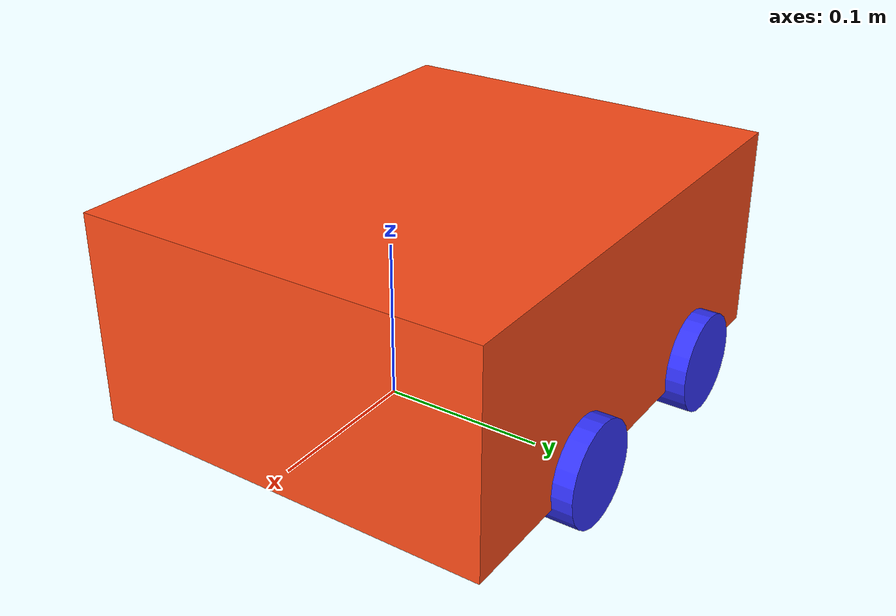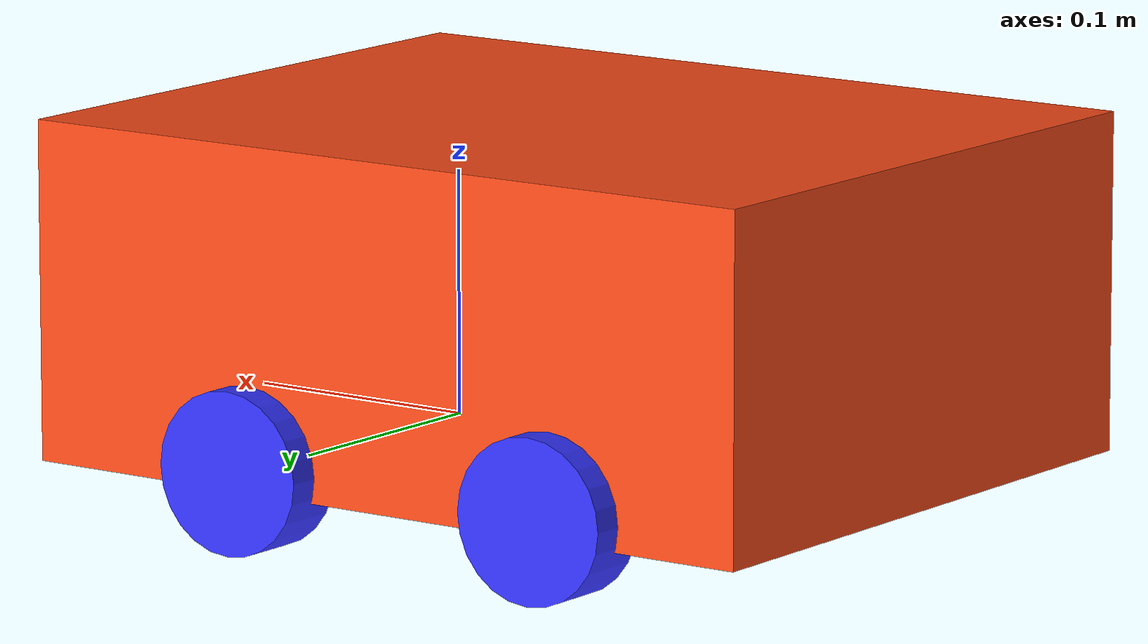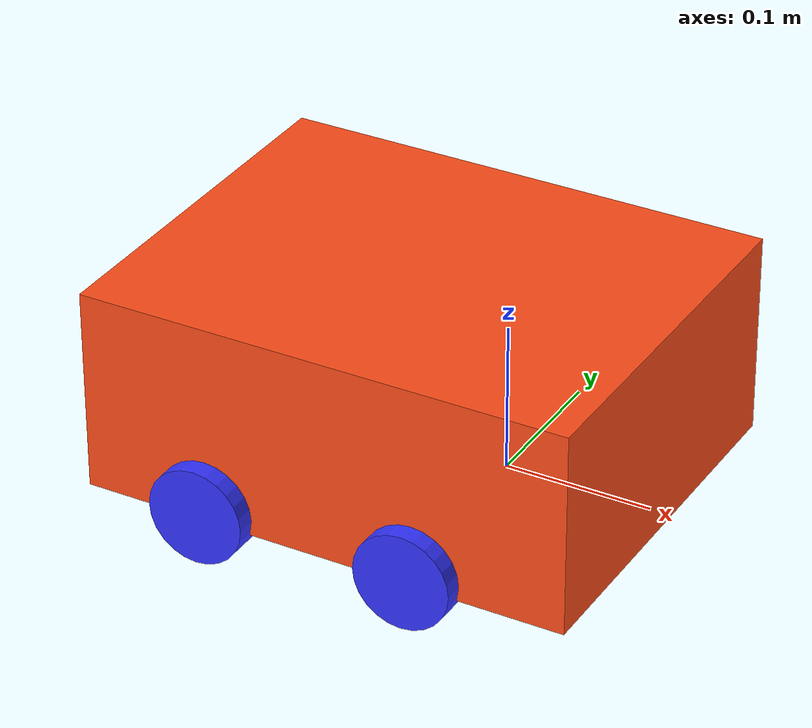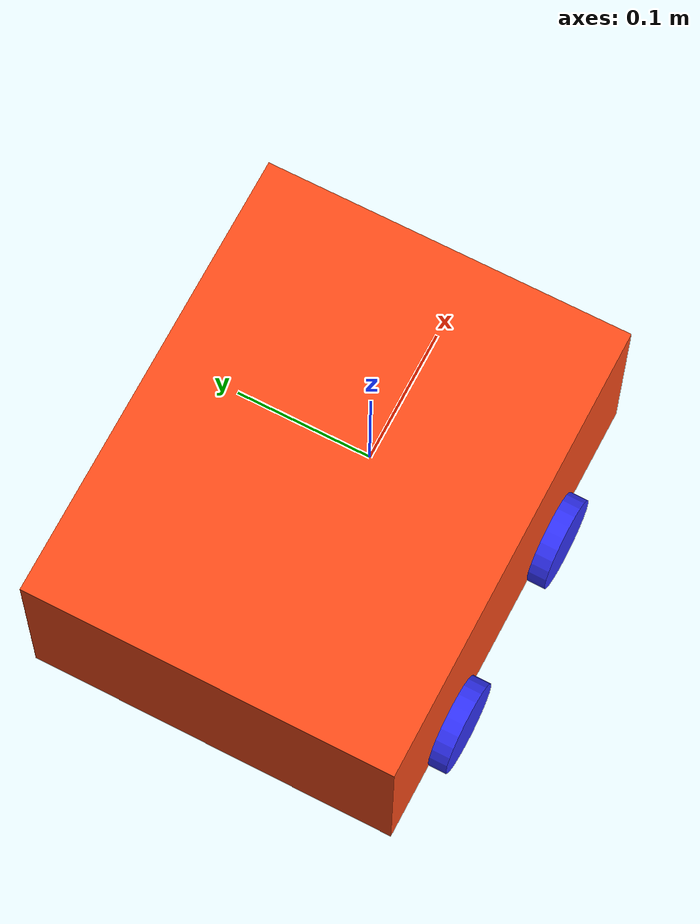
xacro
<?xml version="1.0"?>
<robot xmlns:xacro="http://www.ros.org/wiki/xacro" >
    <xacro:include filename="inertial_macros.xacro"/>
    <xacro:arg name="c_length" default="0.335"/>
    <xacro:property name="chassis_length" value="$(arg c_length)"/>
    <xacro:arg name="c_width" default="0.265"/>
    <xacro:property name="chassis_width" value="$(arg c_width)"/>
    <xacro:arg name="c_height" default="0.138"/>
    <xacro:property name="chassis_height" value="$(arg c_height)"/>
    <xacro:property name="chassis_mass" value="1.0"/>
    <xacro:arg name="wheels_d" default="0.033"/>
    <xacro:property name="wheel_radius" value="$(arg wheels_d)"/>
    <xacro:arg name="wheels_width" default="0.026"/>
    <xacro:arg name="fl_sensor" default="-"/>
    <xacro:property name="fl" value="$(arg fl_sensor)"/>
    <xacro:arg name="fr_sensor" default="-"/>
    <xacro:property name="fr" value="$(arg fr_sensor)"/>
    <xacro:arg name="sl_sensor" default="-"/>
    <xacro:property name="sl" value="$(arg sl_sensor)"/>
    <xacro:arg name="sr_sensor" default="-"/>
    <xacro:property name="sr" value="$(arg sr_sensor)"/>
    <xacro:arg name="rl_sensor" default="-"/>
    <xacro:property name="rl" value="$(arg rl_sensor)"/>
    <xacro:arg name="rr_sensor" default="-"/>
    <xacro:property name="rr" value="$(arg rr_sensor)"/>
    <xacro:property name="wheel_thickness" value="$(arg wheels_width)"/>
    <xacro:property name="wheel_mass" value="0.105"/>
    <xacro:property name="wheel_offset_x" value="0.226"/>
    <xacro:property name="wheel_offset_y" value="${chassis_width / 2}"/>
    <xacro:property name="wheel_offset_z" value="0.01"/>
    <xacro:property name="caster_wheel_radius" value="0.01"/>
    <xacro:property name="caster_wheel_mass" value="0.01"/>
    <xacro:property name="caster_wheel_offset_x" value="0.075"/>
    <xacro:property name="caster_wheel_offset_z" value="${wheel_offset_z - wheel_radius + caster_wheel_radius}"/>

    <xacro:arg name="front_camera" default="False"/>
    <xacro:arg name="rear_camera" default="False"/>

    <xacro:macro name="lidar" params="sensor_x sensor_y sensor_z sensor_angle_x sensor_angle_y frame_name joint_name sensor_name sensor_controller_name min_angle max_angle">
    <joint name="${joint_name}" type="fixed">
        <parent link="chassis"/>
        <child link="${frame_name}"/>
        <origin xyz="${sensor_x} ${sensor_y} ${sensor_z}" rpy="${sensor_angle_x} ${sensor_angle_y} 0"/>
    </joint>

    <link name="${frame_name}">
        <visual>
            <origin xyz="0 0 0"/>
            <geometry>
                <cylinder radius="0.01" length="0.1"/>
            </geometry>
            <material name="black"/>
        </visual>
        <collision>
            <geometry>
                <cylinder radius="0.01" length="0.1"/>
            </geometry>
        </collision>
        <xacro:inertial_cylinder mass="0.1" length="0.04" radius="0.05">
            <origin xyz="0 0 0" rpy="0 0 0"/>
        </xacro:inertial_cylinder>
    </link>

    <gazebo reference="${frame_name}">
        <material>Gazebo/Black</material>

        <sensor name="${sensor_name}" type="ray">
            <pose> 0 0 0 0 0 0 </pose>
            <visualize>false</visualize>
            <update_rate>10</update_rate>
            <ray>
                <scan>
                    <horizontal>
                        <samples>45</samples>
                        <min_angle>${min_angle}</min_angle>
                        <max_angle>${max_angle}</max_angle>
                    </horizontal>
                </scan>
                <range>
                    <min>0.3</min>
                    <max>12</max>
                </range>
            </ray>
            <plugin name="${sensor_controller_name}" filename="libgazebo_ros_ray_sensor.so">
                <ros>
                    <argument>~/out:=${sensor_controller_name}/lidar</argument>
                </ros>
                <output_type>sensor_msgs/LaserScan</output_type>
                <frame_name>${frame_name}</frame_name>
            </plugin>
        </sensor>
    </gazebo>
    </xacro:macro>

    <xacro:macro name="camera" params="camera_joint link_name camera_optical_joint camera_link_optical sensor_name camera_controller angle x">
        <joint name="${camera_joint}" type="fixed">
            <parent link="chassis"/>
            <child link="${link_name}"/>
            <origin xyz="${x} 0 0.181" rpy="0 0.18 ${angle}"/>
        </joint>

        <link name="${link_name}">
            <visual>
                <geometry>
                    <box size="0.010 0.03 0.03"/>
                </geometry>
                <material name="black"/>
            </visual>
            <visual>
                <origin xyz="0 0 -0.05"/>
                <geometry>
                    <cylinder radius="0.002" length="0.1"/>
                </geometry>
                <material name="black"/>
            </visual>
        </link>
        <joint name="${camera_optical_joint}" type="fixed">
            <parent link="${link_name}"/>
            <child link="${camera_optical_joint}"/>
            <origin xyz="0 0 0" rpy="${-pi/2} 0 ${-pi/2}"/>
        </joint>

        <link name="${camera_optical_joint}"></link>
        <gazebo reference="${link_name}">
            <material>Gazebo/Black</material>

            <sensor name="${sensor_name}" type="camera">
                <pose> 0 0 0 0 0 0 </pose>
                <visualize>false</visualize>
                <update_rate>10</update_rate>
                <camera>
                    <horizontal_fov>1.089</horizontal_fov>
                    <image>
                        <format>R8G8B8</format>
                        <width>640</width>
                        <height>480</height>
                    </image>
                    <clip>
                        <near>0.05</near>
                        <far>8.0</far>
                    </clip>
                </camera>
                <plugin name="${camera_controller}" filename="libgazebo_ros_camera.so">
                    <frame_name>${camera_link_optical}</frame_name>
                </plugin>
            </sensor>
        </gazebo>
    </xacro:macro>

    <xacro:if value="${fl == 'lidar_sensor'}">
        <xacro:lidar sensor_y="${-chassis_width/4}" sensor_x="${0}" sensor_z="${chassis_height/2}" sensor_angle_x="0" sensor_angle_y="0" frame_name="fl_frame" joint_name="fl_joint" sensor_name="fl_sensor" sensor_controller_name="lf" min_angle="${pi/2}" max_angle="${3*pi/2}"/>
    </xacro:if>
    <xacro:if value="${fr == 'lidar_sensor'}">
        <xacro:lidar sensor_y="${chassis_width/4}" sensor_x="${0}" sensor_z="${chassis_height/2}" sensor_angle_x="0" sensor_angle_y="0" frame_name="fr_frame" joint_name="fr_joint" sensor_name="fr_sensor" sensor_controller_name="rf" min_angle="${pi/2}" max_angle="${3*pi/2}"/>
    </xacro:if>
    <xacro:if value="${sl == 'lidar_sensor'}">
        <xacro:lidar sensor_y="${-chassis_width/2}" sensor_x="${chassis_length/2}" sensor_z="${chassis_height/2}" sensor_angle_x="0" sensor_angle_y="0" frame_name="sl_frame" joint_name="sl_joint" sensor_name="sl_sensor" sensor_controller_name="ls" min_angle="${pi}" max_angle="${2*pi}"/>
    </xacro:if>
    <xacro:if value="${sr == 'lidar_sensor'}">
        <xacro:lidar sensor_y="${chassis_width/2}" sensor_x="${chassis_length/2}" sensor_z="${chassis_height/2}" sensor_angle_x="0" sensor_angle_y="0" frame_name="sr_frame" joint_name="sr_joint" sensor_name="sr_sensor" sensor_controller_name="rs" min_angle="${0}" max_angle="${pi}"/>
    </xacro:if>
    <xacro:if value="${rl == 'lidar_sensor'}">
        <xacro:lidar sensor_y="${-chassis_width/4}" sensor_x="${chassis_length}" sensor_z="${chassis_height/2}" sensor_angle_x="0" sensor_angle_y="0" frame_name="rl_frame" joint_name="rl_joint" sensor_name="rl_sensor" sensor_controller_name="rl" min_angle="${-pi/2}" max_angle="${pi/2}"/>
    </xacro:if>
    <xacro:if value="${rr == 'lidar_sensor'}">
        <xacro:lidar sensor_y="${chassis_width/4}" sensor_x="${chassis_length}" sensor_z="${chassis_height/2}" sensor_angle_x="0" sensor_angle_y="0" frame_name="rr_frame" joint_name="rr_joint" sensor_name="rr_sensor" sensor_controller_name="rr" min_angle="${-pi/2}" max_angle="${pi/2}"/>
    </xacro:if>
    <xacro:if value="$(arg front_camera)">
        <xacro:camera camera_joint="camer_joint_1" link_name="camera_link_name_1" camera_optical_joint="camera_optical_joint_1" camera_link_optical="camera_link_optical_1" sensor_name="rear_camera" camera_controller="camera_controller_1" angle="${pi}" x="${0}" />
    </xacro:if>
    <xacro:if value="$(arg rear_camera)">
        <xacro:camera camera_joint="camer_joint_2" link_name="camera_link_name_2" camera_optical_joint="camera_optical_joint_2" camera_link_optical="camera_link_optical_2" sensor_name="front_camera" camera_controller="camera_controller_2" angle="0" x="${chassis_length}" />
    </xacro:if>

    <material name="white">
        <color rgba="1 1 1 1" />
    </material>

    <material name="orange">
        <color rgba="1 0.3 0.1 1"/>
    </material>

    <material name="blue">
        <color rgba="0.2 0.2 1 1"/>
    </material>

    <material name="black">
        <color rgba="0 0 0 1"/>
    </material>

    <material name="red">
        <color rgba="1 0 0 1"/>
    </material>

    <!-- BASE LINK -->

    <link name="base_link">
        <origin xyz="0 0 20" rpy="0 0 0"/>
    </link>

    <!-- BASE_FOOTPRINT LINK -->

    <joint name="base_footprint_joint" type="fixed">
        <parent link="base_link"/>
        <child link="base_footprint"/>
        <origin xyz="0 0 0" rpy="0 0 0"/>
    </joint>

    <link name="base_footprint">
    </link>

    <!-- CHASSIS LINK -->

    <joint name="chassis_joint" type="fixed">
        <parent link="base_link"/>
        <child link="chassis"/>
        <origin xyz="${-wheel_offset_x} 0 ${-wheel_offset_z}"/>
    </joint>

    <link name="chassis">
        <visual>
            <origin xyz="${chassis_length/2} 0 ${chassis_height/2}"/>
            <geometry>
                <box size="${chassis_length} ${chassis_width} ${chassis_height}"/>
            </geometry>
            <material name="orange"/>
        </visual>
        <collision>
            <origin xyz="${chassis_length/2} 0 ${chassis_height/2}"/>
            <geometry>
                <box size="${chassis_length} ${chassis_width} ${chassis_height}"/>
            </geometry>
        </collision>
        <xacro:inertial_box mass="0.5" x="${chassis_length}" y="${chassis_width}" z="${chassis_height}">
            <origin xyz="${chassis_length/2} 0 ${chassis_height/2}" rpy="0 0 0"/>
        </xacro:inertial_box>
    </link>

    <gazebo reference="chassis">
        <material>Gazebo/Orange</material>
    </gazebo>

    <!-- LEFT WHEEL LINK -->

    <joint name="left_wheel_joint" type="continuous">
        <parent link="base_link"/>
        <child link="left_wheel"/>
        <origin xyz="${chassis_length - 0.33} ${wheel_offset_y} 0" rpy="-${pi/2} 0 0" />
        <axis xyz="0 0 1"/>
    </joint>

    <link name="left_wheel">
        <visual>
            <geometry>
                <cylinder radius="${wheel_radius}" length="${wheel_thickness}"/>
            </geometry>
            <material name="blue"/>
        </visual>
        <collision>
            <geometry>
                <sphere radius="${wheel_radius}"/>
            </geometry>
        </collision>
        <xacro:inertial_cylinder mass="${wheel_mass}" length="${wheel_thickness}" radius="${wheel_radius}">
            <origin xyz="0 0 0" rpy="0 0 0"/>
        </xacro:inertial_cylinder>
    </link>

    <joint name="left_wheel_joint_b" type="continuous">
        <parent link="base_link"/>
        <child link="left_wheel_b"/>
        <origin xyz="-0.14 ${wheel_offset_y} 0" rpy="-${pi/2} 0 0" />
        <axis xyz="0 0 1"/>
    </joint>

    <link name="left_wheel_b">
        <visual>
            <geometry>
                <cylinder radius="${wheel_radius}" length="${wheel_thickness}"/>
            </geometry>
            <material name="blue"/>
        </visual>
        <collision>
            <geometry>
                <sphere radius="${wheel_radius}"/>
            </geometry>
        </collision>
        <xacro:inertial_cylinder mass="${wheel_mass}" length="${wheel_thickness}" radius="${wheel_radius}">
            <origin xyz="0 0 0" rpy="0 0 0"/>
        </xacro:inertial_cylinder>
    </link>

    <gazebo reference="left_wheel">
        <material>Gazebo/Blue</material>
    </gazebo>

    <gazebo reference="left_wheel_b">
        <material>Gazebo/Blue</material>
    </gazebo>

    <!-- RIGHT WHEEL LINK -->

    <joint name="right_wheel_joint" type="continuous">
        <parent link="base_link"/>
        <child link="right_wheel"/>
        <origin xyz="${chassis_length - 0.33} ${-wheel_offset_y} 0" rpy="${pi/2} 0 0" />
        <axis xyz="0 0 -1"/>
    </joint>

    <link name="right_wheel">
        <visual>
            <geometry>
                <cylinder radius="${wheel_radius}" length="${wheel_thickness}"/>
            </geometry>
            <material name="blue"/>
        </visual>
        <collision>
            <geometry>
                <sphere radius="${wheel_radius}"/>
            </geometry>
        </collision>
        <xacro:inertial_cylinder mass="${wheel_mass}" length="${wheel_thickness}" radius="${wheel_radius}">
            <origin xyz="0 0 0" rpy="0 0 0"/>
        </xacro:inertial_cylinder>
    </link>

    <joint name="right_wheel_joint_b" type="continuous">
        <parent link="base_link"/>
        <child link="right_wheel_b"/>
        <origin xyz="-0.14 ${-wheel_offset_y} 0" rpy="${pi/2} 0 0" />
        <axis xyz="0 0 -1"/>
    </joint>

    <link name="right_wheel_b">
        <visual>
            <geometry>
                <cylinder radius="${wheel_radius}" length="${wheel_thickness}"/>
            </geometry>
            <material name="blue"/>
        </visual>
        <collision>
            <geometry>
                <sphere radius="${wheel_radius}"/>
            </geometry>
        </collision>
        <xacro:inertial_cylinder mass="${wheel_mass}" length="${wheel_thickness}" radius="${wheel_radius}">
            <origin xyz="0 0 0" rpy="0 0 0"/>
        </xacro:inertial_cylinder>
    </link>

    <gazebo reference="right_wheel">
        <material>Gazebo/Blue</material>
    </gazebo>
    <gazebo reference="right_wheel_b">
        <material>Gazebo/Blue</material>
    </gazebo>

</robot>

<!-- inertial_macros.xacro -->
<robot xmlns:xacro="http://www.ros.org/wiki/xacro" >
    <xacro:macro name="inertial_sphere" params="mass radius *origin">
        <inertial>
            <xacro:insert_block name="origin"/>
            <mass value="${mass}" />
            <inertia ixx="${(2/5) * mass * (radius*radius)}" ixy="0.0" ixz="0.0"
                    iyy="${(2/5) * mass * (radius*radius)}" iyz="0.0"
                    izz="${(2/5) * mass * (radius*radius)}" />
        </inertial>
    </xacro:macro>

    <xacro:macro name="inertial_box" params="mass x y z *origin">
        <inertial>
            <xacro:insert_block name="origin"/>
            <mass value="${mass}" />
            <inertia ixx="${(1/12) * mass * (y*y+z*z)}" ixy="0.0" ixz="0.0"
                    iyy="${(1/12) * mass * (x*x+z*z)}" iyz="0.0"
                    izz="${(1/12) * mass * (x*x+y*y)}" />
        </inertial>
    </xacro:macro>

    <xacro:macro name="inertial_cylinder" params="mass length radius *origin">
        <inertial>
            <xacro:insert_block name="origin"/>
            <mass value="${mass}" />
            <inertia ixx="${(1/12) * mass * (3*radius*radius + length*length)}" ixy="0.0" ixz="0.0"
                    iyy="${(1/12) * mass * (3*radius*radius + length*length)}" iyz="0.0"
                    izz="${(1/2) * mass * (radius*radius)}" />
        </inertial>
    </xacro:macro>
</robot>
